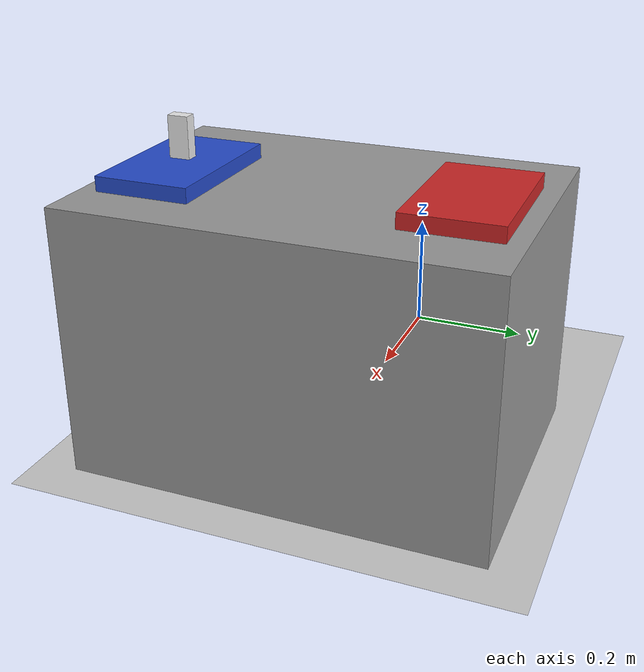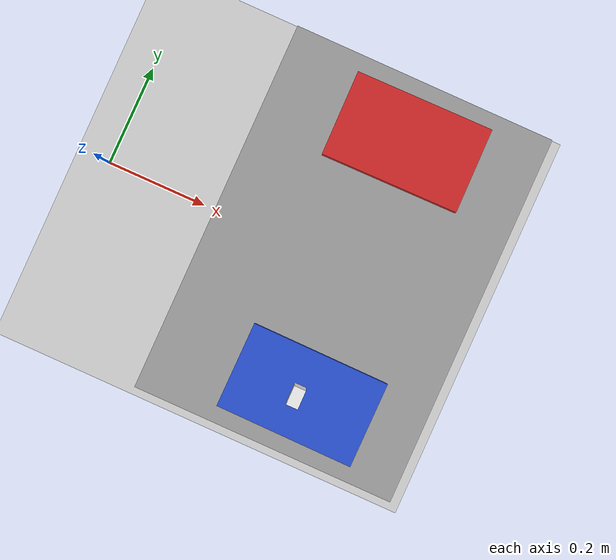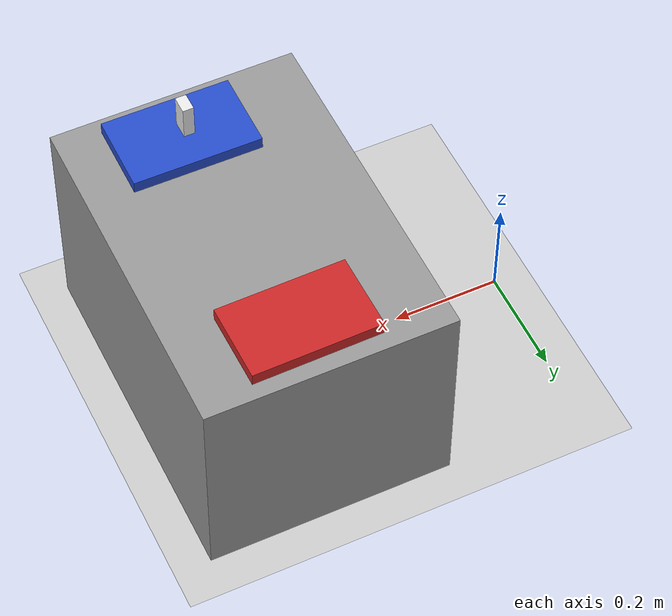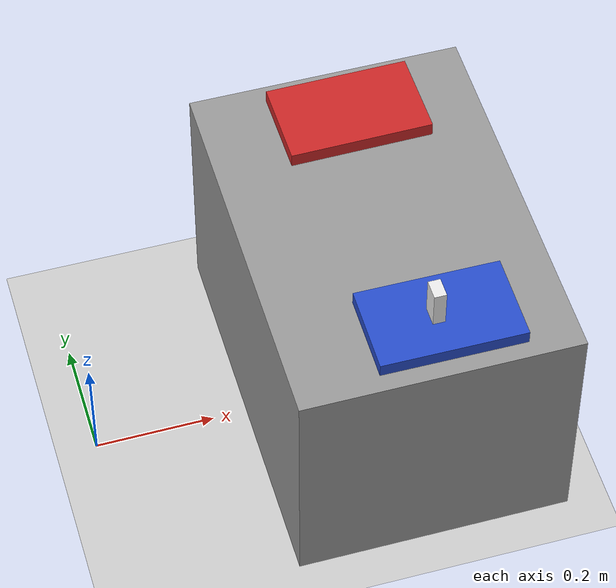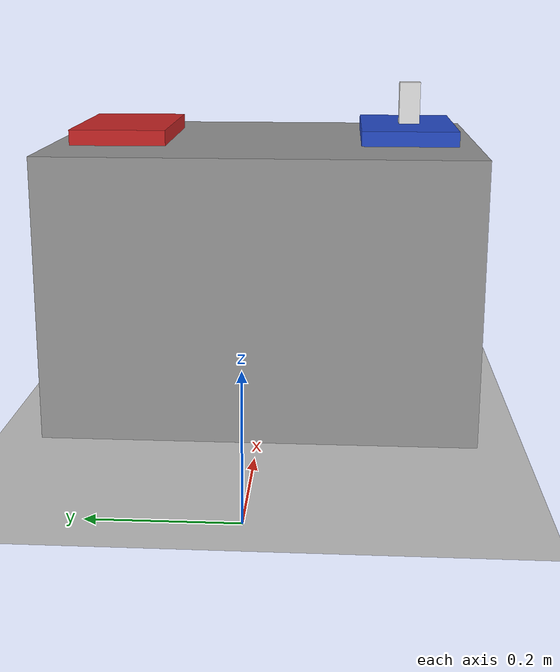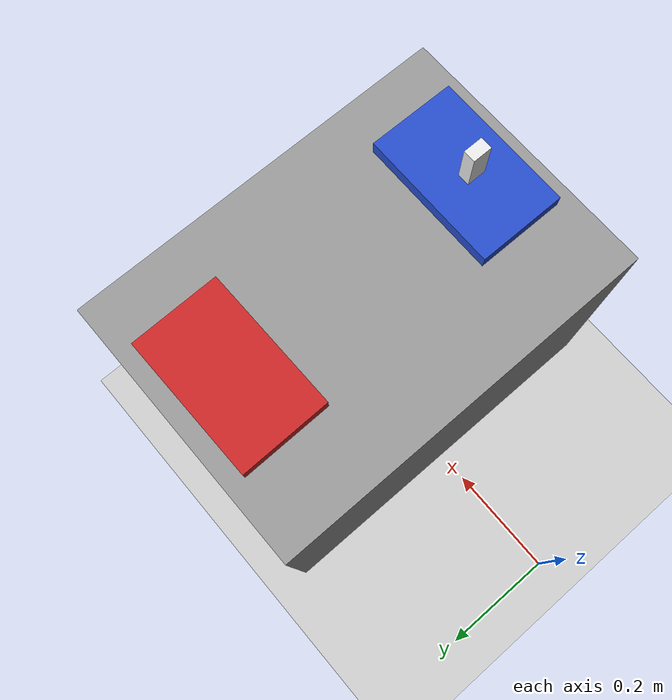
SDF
<sdf version="1.6">
 <world name="default">
  <light name="sun" type="directional">
   <diffuse>1 1 1 1</diffuse>
   <specular>0.8 0.8 0.8 1</specular>
   <direction>-0.5 -0.5 -1</direction>
   <pose>0 0 2 0 0 0</pose>
   <attenuation>
    <range>1000</range>
    <constant>1</constant>
    <linear>1</linear>
    <quadratic>0.001</quadratic>
   </attenuation>
  </light>
  <model name="ground_plane">
   <static>1</static>
   <link name="link">
    <collision name="collision">
     <geometry><plane><size>100 100</size><normal>0 0 1</normal></plane></geometry>
    </collision>
    <visual name="visual">
     <geometry><plane><size>100 100</size><normal>0 0 1</normal></plane></geometry>
     <material>
      <script><uri>file://media/materials/scripts/gazebo.material</uri><name>Gazebo/Grey</name></script>
     </material>
    </visual>
    <kinematic>1</kinematic>
   </link>
  </model>
  <model name="stone">
   <pose>0.500286 -0.221972 0.475172 7.5e-05 3.5e-05 0.003179</pose>
   <link name="link">
    <inertial>
     <mass>0.05</mass>
     <inertia><ixx>0.001</ixx><ixy>0</ixy><ixz>0</ixz><iyy>0.001</iyy><iyz>0</iyz><izz>0.001</izz></inertia>
    </inertial>
    <collision name="collision">
     <geometry><box><size>0.02 0.032 0.064</size></box></geometry>
     <surface>
      <contact><ode><max_vel>0</max_vel><min_depth>0.003</min_depth></ode></contact>
      <friction><ode><mu>1.13</mu><mu2>1.13</mu2></ode></friction>
     </surface>
    </collision>
    <visual name="visual">
     <geometry><box><size>0.02 0.032 0.064</size></box></geometry>
     <material>
      <script><uri>file://media/materials/scripts/gazebo.material</uri><name>Gazebo/White</name></script>
     </material>
    </visual>
   </link>
  </model>
  <gravity>0 0 -9.8</gravity>
  <magnetic_field>6e-06 2.3e-05 -4.2e-05</magnetic_field>
  <atmosphere type="adiabatic"/>
  <physics name="default_physics" default="0" type="ode">
   <max_step_size>0.001</max_step_size>
   <real_time_factor>1</real_time_factor>
   <real_time_update_rate>1000</real_time_update_rate>
  </physics>
  <scene><ambient>0.4 0.4 0.4 1</ambient><background>0.7 0.7 0.7 1</background><shadows>1</shadows></scene>
  <audio><device>default</device></audio>
  <spherical_coordinates>
   <surface_model>EARTH_WGS84</surface_model>
   <latitude_deg>0</latitude_deg>
   <longitude_deg>0</longitude_deg>
   <elevation>0</elevation>
   <heading_deg>0</heading_deg>
  </spherical_coordinates>
  <model name="place_tray">
   <pose>0.495897 0.219654 0.431426 -0.000112 -9.6e-05 0.01087</pose>
   <link name="link">
    <inertial>
     <mass>1</mass>
     <inertia>
      <ixx>0.166667</ixx>
      <ixy>0</ixy>
      <ixz>0</ixz>
      <iyy>0.166667</iyy>
      <iyz>0</iyz>
      <izz>0.166667</izz>
     </inertia>
    </inertial>
    <collision name="collision">
     <geometry><box><size>0.235035 0.144926 0.023348</size></box></geometry>
    </collision>
    <visual name="visual">
     <geometry><box><size>0.235035 0.144926 0.023348</size></box></geometry>
     <material>
      <script><name>Gazebo/Red</name><uri>file://media/materials/scripts/gazebo.material</uri></script>
     </material>
    </visual>
   </link>
  </model>
  <model name="table">
   <static>1</static>
   <pose>0.483572 0.000584 0.209863 -4.5e-05 -1.6e-05 1.8e-05</pose>
   <link name="link">
    <inertial>
     <mass>1</mass>
     <inertia>
      <ixx>0.166667</ixx>
      <ixy>0</ixy>
      <ixz>0</ixz>
      <iyy>0.166667</iyy>
      <iyz>0</iyz>
      <izz>0.166667</izz>
     </inertia>
    </inertial>
    <collision name="collision">
     <geometry><box><size>0.453157 0.642049 0.419823</size></box></geometry>
    </collision>
    <visual name="visual">
     <geometry><box><size>0.453157 0.642049 0.419823</size></box></geometry>
     <material>
      <script><name>Gazebo/Grey</name><uri>file://media/materials/scripts/gazebo.material</uri></script>
     </material>
    </visual>
   </link>
  </model>
  <model name="pick_tray">
   <pose>0.509179 -0.219554 0.430776 3.5e-05 -1.8e-05 -0.006066</pose>
   <link name="link">
    <inertial>
     <mass>1</mass>
     <inertia>
      <ixx>0.166667</ixx>
      <ixy>0</ixy>
      <ixz>0</ixz>
      <iyy>0.166667</iyy>
      <iyz>0</iyz>
      <izz>0.166667</izz>
     </inertia>
    </inertial>
    <collision name="collision">
     <geometry><box><size>0.235035 0.144926 0.023348</size></box></geometry>
    </collision>
    <visual name="visual">
     <geometry><box><size>0.235035 0.144926 0.023348</size></box></geometry>
     <material>
      <script><name>Gazebo/Blue</name><uri>file://media/materials/scripts/gazebo.material</uri></script>
     </material>
    </visual>
   </link>
  </model>
 </world>
</sdf>
